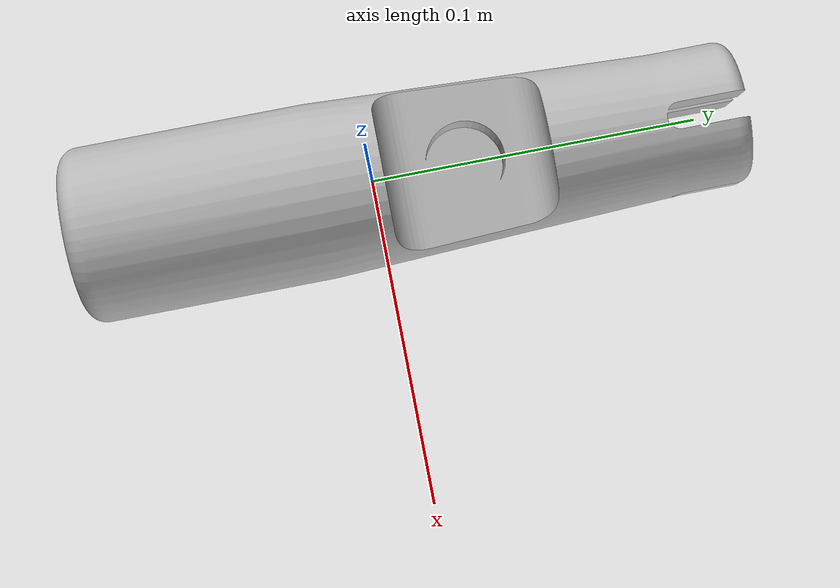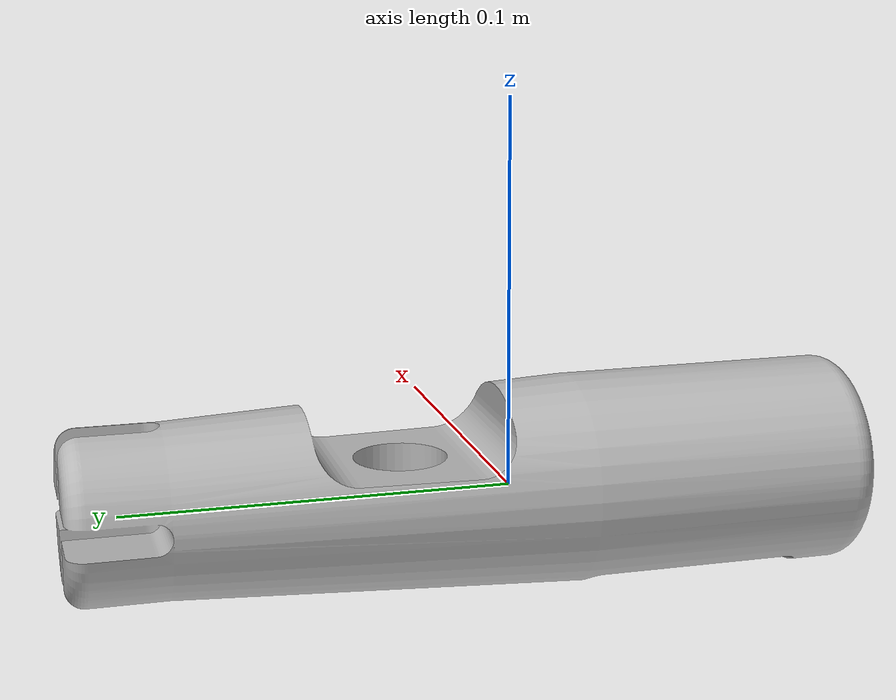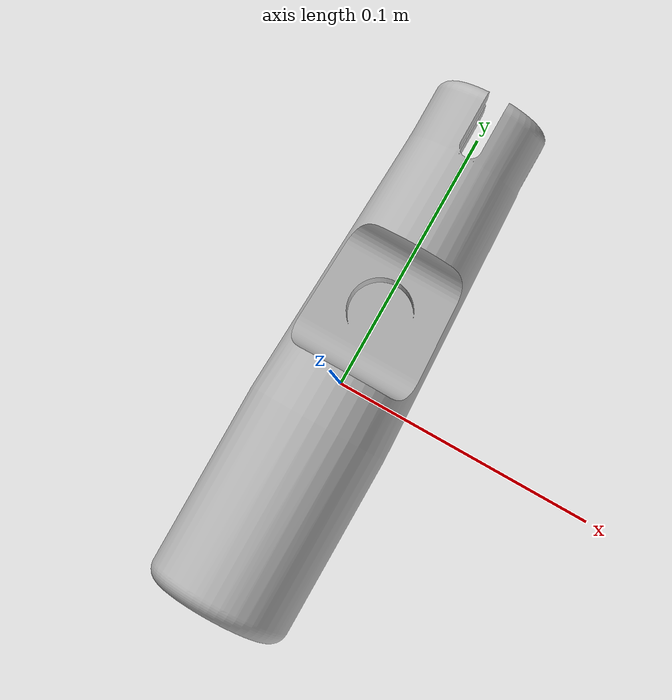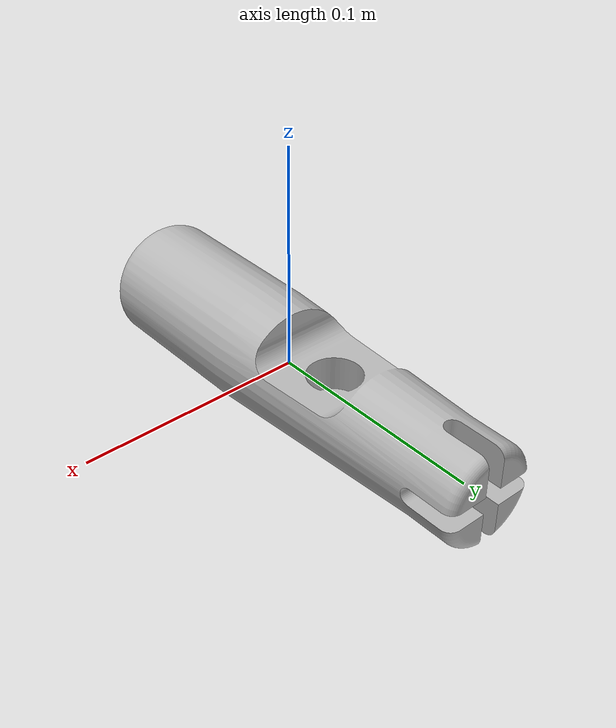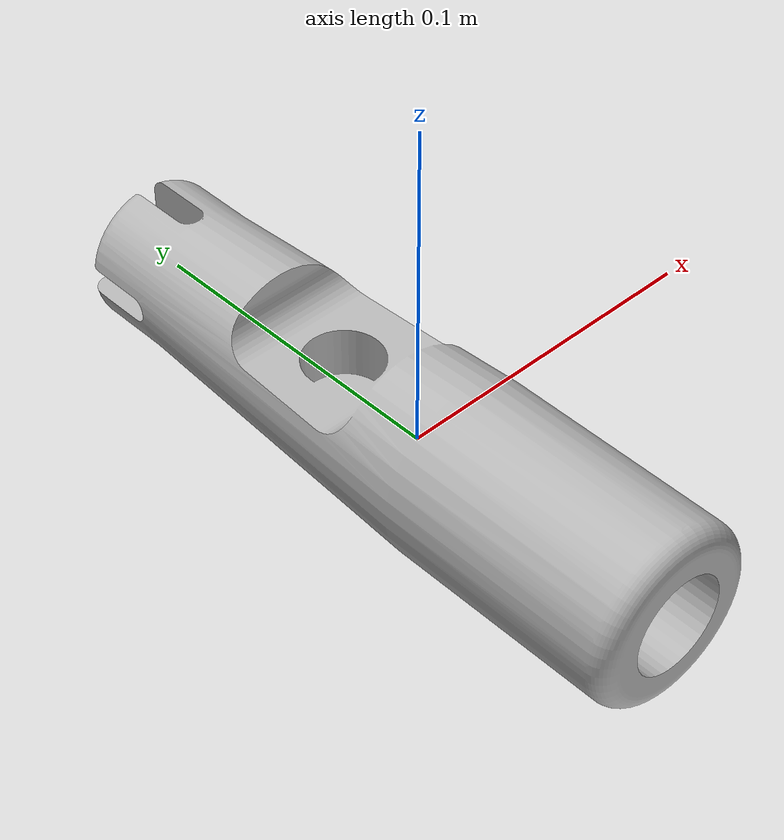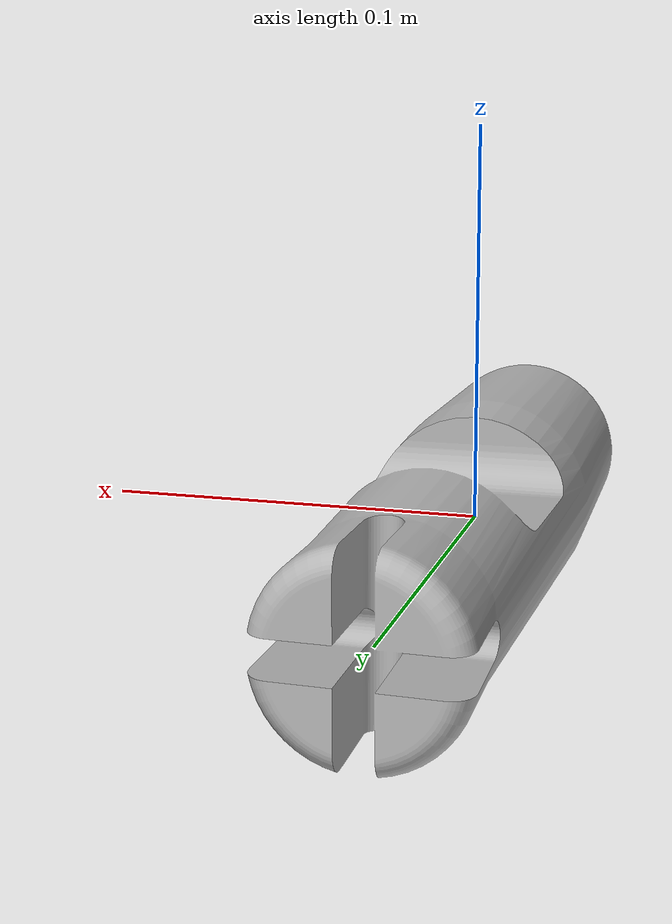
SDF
<?xml version="1.0" ?>
<sdf version="1.6">
  <model name="3)Fuselage">
    <static>true</static>
    <link name="link">
      <collision name="collision">
        <geometry>
          <mesh>
            <scale>0.001 0.001 0.001</scale>
            <uri>model://3)Fuselage/3)Fuselage.stl</uri>
          </mesh>
        </geometry>
      </collision>
      <visual name="visual">
        <geometry>
          <mesh>
            <scale>0.001 0.001 0.001</scale>
            <uri>model://3)Fuselage/3)Fuselage.dae</uri>
          </mesh>
        </geometry>
      </visual>
    </link>
  </model>
</sdf>
